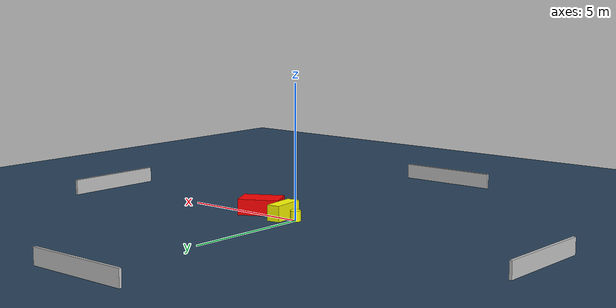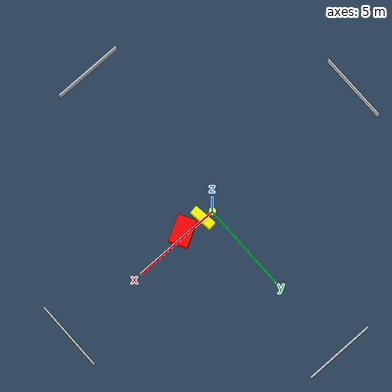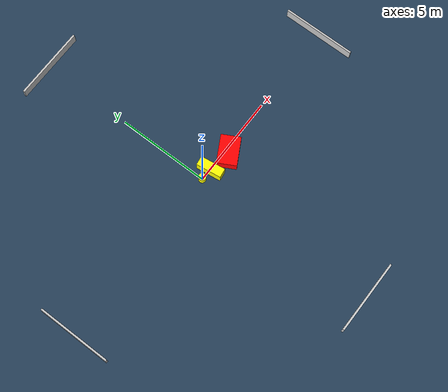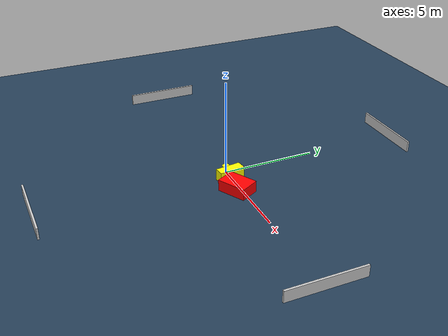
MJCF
<?xml version="1.0" ?>
<mujoco model="generated_environment">
  <option timestep="0.01" integrator="RK4" cone="elliptic"/>
  <default>
    <geom density="1"/>
  </default>
  <asset>
    <texture builtin="gradient" height="3072" name="skybox" rgb1="0.3 0.5 0.7" rgb2="0 0 0" type="skybox" width="512"/>
    <texture builtin="checker" height="300" name="groundplane" rgb1="0.2 0.3 0.4" rgb2="0.1 0.2 0.3" type="2d" width="300"/>
    <material name="groundplane" reflectance="0.2" texrepeat="5 5" texture="groundplane"/>
  </asset>
  <worldbody>
    <light dir="0 0 -1" directional="true" pos="0 0 1.5"/>
    <geom condim="3" friction="0.5 0.005 0.001" material="groundplane" name="floor" pos="0 0 0" size="0 0 0.05" type="plane"/>
    <body name="walls">
      <geom name="wall_1" condim="4" pos="-10.0 0.0 0.3" rgba="0.800000011920929 0.800000011920929 0.800000011920929 1.0" size="0.05 2.0 0.3" type="box"/>
      <geom name="wall_2" condim="4" pos="10.0 0.0 0.3" rgba="0.800000011920929 0.800000011920929 0.800000011920929 1.0" size="0.05 2.0 0.3" type="box"/>
      <geom name="wall_3" condim="4" pos="0.0 -10.0 0.3" rgba="0.800000011920929 0.800000011920929 0.800000011920929 1.0" size="2.0 0.05 0.3" type="box"/>
      <geom name="wall_4" condim="4" pos="0.0 10.0 0.3" rgba="0.800000011920929 0.800000011920929 0.800000011920929 1.0" size="2.0 0.05 0.3" type="box"/>
    </body>
    <body name="robot">
      <joint name="joint_x" type="slide" pos="0 0 0" axis="1 0 0"/>
      <joint name="joint_y" type="slide" pos="0 0 0" axis="0 1 0"/>
      <geom name="robot" type="cylinder" pos="0.0 0.0 0.2" size="0.2 0.2 0.0" mass="5.0" friction="1.0 0.005 0.0001" condim="4" rgba="1.0 1.0 0.0 1.0"/>
    </body>
    <body name="obstacle_1_movable">
      <geom name="obstacle_1_movable" condim="4" pos="0.6253678302628345 -0.05004891463497965 0.3" euler="0 0 277.5105306089677" friction="0.0 0.005 0.001" rgba="1.0 1.0 0.0 1.0" size="0.6777977857294765 0.250715852641583 0.3" type="box" mass="0.1"/>
      <joint type="free"/>
    </body>
    <body name="obstacle_2_static">
      <geom name="obstacle_2_static" condim="4" pos="1.885848930485264 -0.22740105788105222 0.3" euler="0 0 28.552304930493413" friction="0.0 0.005 0.001" rgba="1.0 0.0 0.0 1.0" size="0.7748961803297327 0.5291006365131301 0.3" type="box"/>
    </body>
  </worldbody>
  <actuator>
    <motor name="actuator_x" joint="joint_x" gear="1" ctrlrange="-1 1"/>
    <motor name="actuator_y" joint="joint_y" gear="1" ctrlrange="-1 1"/>
  </actuator>
</mujoco>
